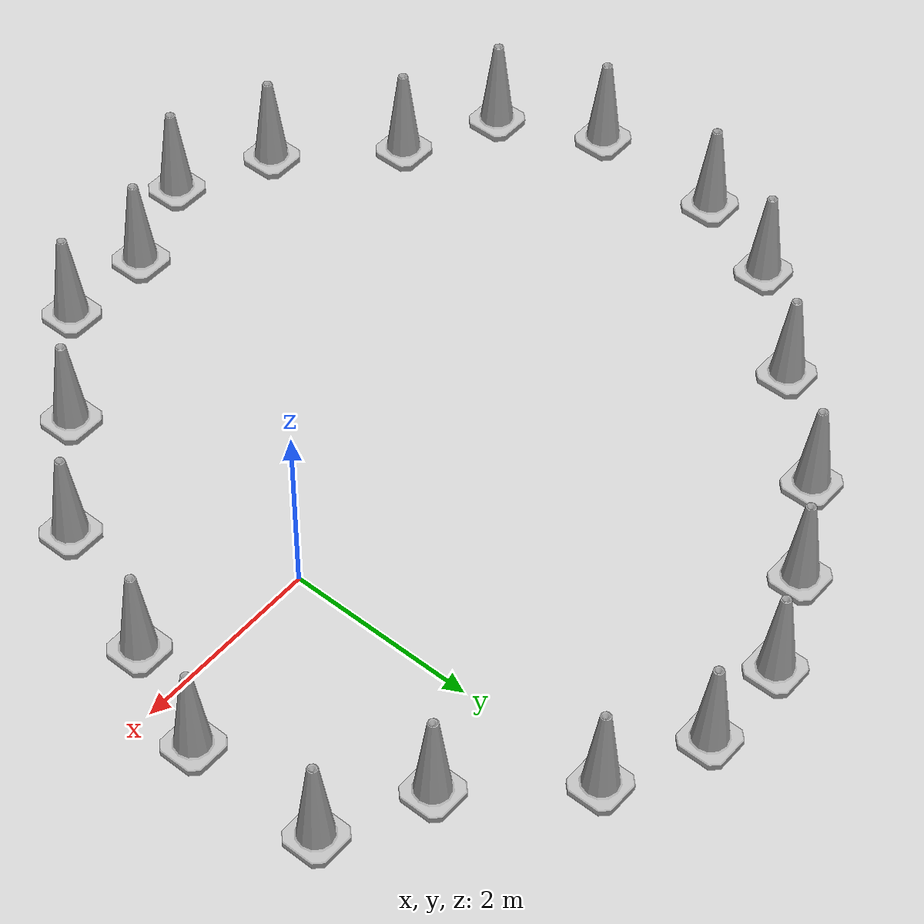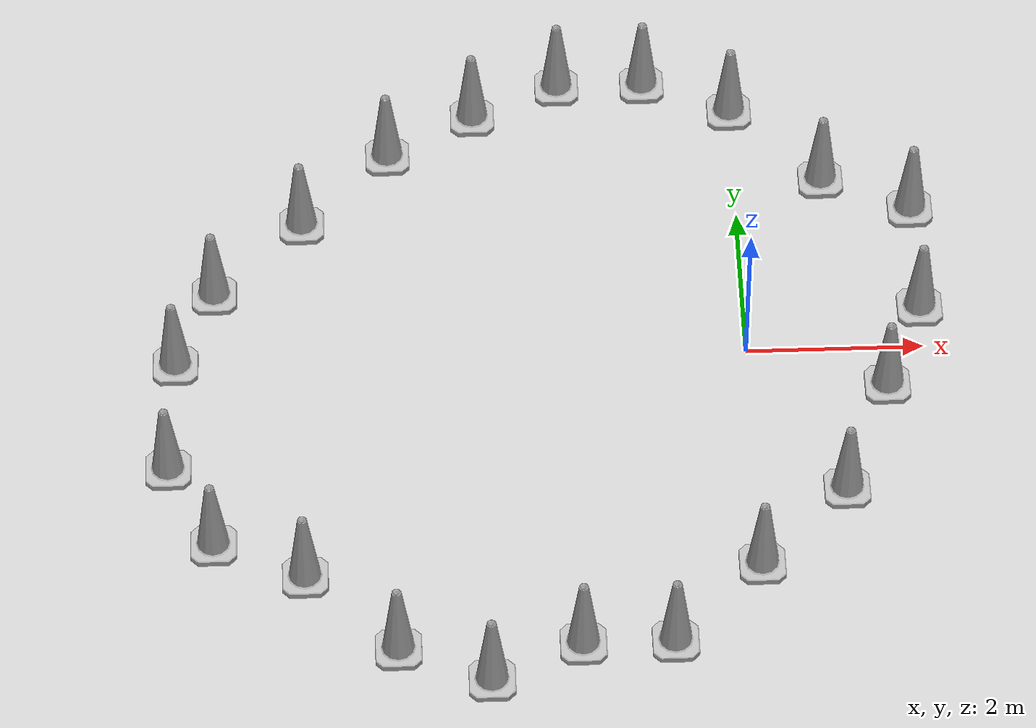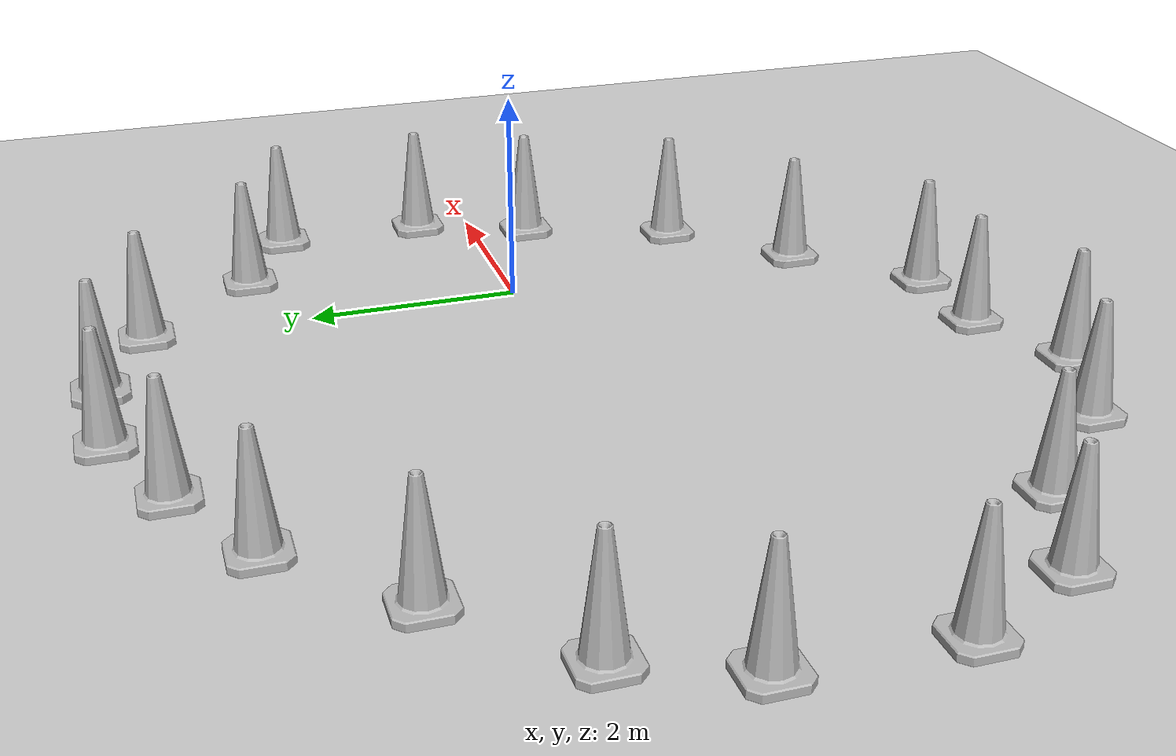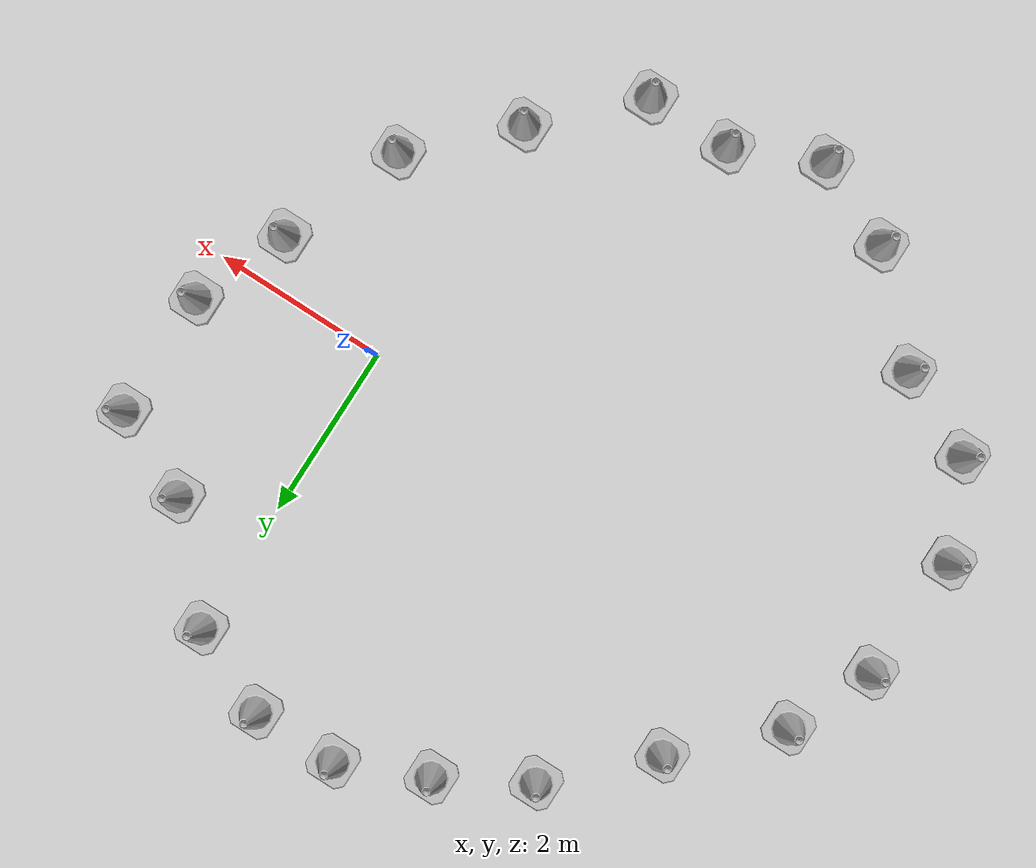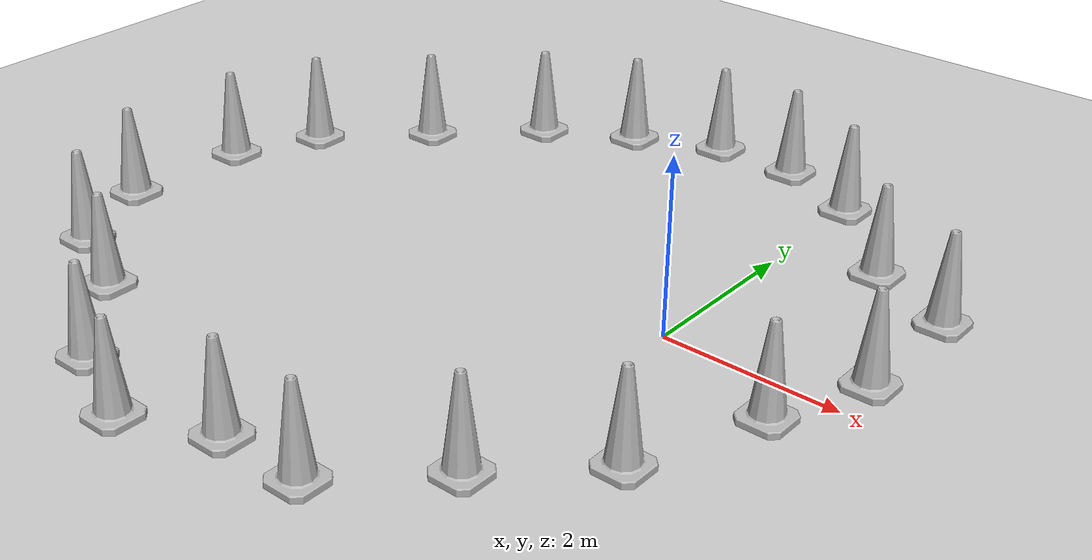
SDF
<sdf version="1.4">
 <world name="default">
  <light name="sun" type="directional">
   <pose>0 0 10 0 -0 0</pose>
   <diffuse>0.8 0.8 0.8 1</diffuse>
   <specular>0.2 0.2 0.2 1</specular>
   <attenuation>
    <range>1000</range>
    <constant>0.9</constant>
    <linear>0.01</linear>
    <quadratic>0.001</quadratic>
   </attenuation>
   <direction>-0.5 0.1 -0.9</direction>
  </light>
  <model name="ground_plane">
   <static>1</static>
   <link name="link">
    <collision name="collision">
     <geometry><plane><normal>0 0 1</normal><size>100 100</size></plane></geometry>
     <surface><friction><ode><mu>100</mu><mu2>50</mu2></ode></friction></surface>
    </collision>
    <visual name="visual">
     <cast_shadows>0</cast_shadows>
     <geometry><plane><normal>0 0 1</normal><size>100 100</size></plane></geometry>
     <material>
      <script><uri>file://media/materials/scripts/gazebo.material</uri><name>Gazebo/Grey</name></script>
     </material>
    </visual>
    <velocity_decay><linear>0</linear><angular>0</angular></velocity_decay>
   </link>
  </model>
  <physics type="ode">
   <max_step_size>0.001</max_step_size>
   <real_time_factor>1</real_time_factor>
   <real_time_update_rate>1000</real_time_update_rate>
   <gravity>0 0 -9.8</gravity>
  </physics>
  <scene><ambient>0.4 0.4 0.4 1</ambient><background>0.7 0.7 0.7 1</background><shadows>1</shadows></scene>
  <spherical_coordinates>
   <surface_model>EARTH_WGS84</surface_model>
   <latitude_deg>0</latitude_deg>
   <longitude_deg>0</longitude_deg>
   <elevation>0</elevation>
   <heading_deg>0</heading_deg>
  </spherical_coordinates>
  <model name="Construction Cone">
   <link name="link">
    <collision name="collision">
     <geometry>
      <mesh><scale>10 10 10</scale><uri>model://construction_cone/meshes/construction_cone.dae</uri></mesh>
     </geometry>
    </collision>
    <visual name="visual">
     <geometry>
      <mesh><scale>10 10 10</scale><uri>model://construction_cone/meshes/construction_cone.dae</uri></mesh>
     </geometry>
    </visual>
    <velocity_decay><linear>0</linear><angular>0</angular></velocity_decay>
    <inertial>
     <inertia><ixx>1</ixx><ixy>0</ixy><ixz>0</ixz><iyy>1</iyy><iyz>0</iyz><izz>1</izz></inertia>
     <mass>1</mass>
    </inertial>
   </link>
   <pose>-6.43497 -0 -7e-06 -5e-06 3e-06 3.23117e-27</pose>
   <static>0</static>
  </model>
  <model name="Construction Cone_0">
   <link name="link">
    <collision name="collision">
     <geometry>
      <mesh><scale>10 10 10</scale><uri>model://construction_cone/meshes/construction_cone.dae</uri></mesh>
     </geometry>
    </collision>
    <visual name="visual">
     <geometry>
      <mesh><scale>10 10 10</scale><uri>model://construction_cone/meshes/construction_cone.dae</uri></mesh>
     </geometry>
    </visual>
    <velocity_decay><linear>0</linear><angular>0</angular></velocity_decay>
    <inertial>
     <inertia><ixx>1</ixx><ixy>0</ixy><ixz>0</ixz><iyy>1</iyy><iyz>0</iyz><izz>1</izz></inertia>
     <mass>1</mass>
    </inertial>
   </link>
   <pose>-6 1 -9e-06 -1e-06 -0 -0</pose>
   <static>0</static>
  </model>
  <model name="Construction Cone_1">
   <link name="link">
    <collision name="collision">
     <geometry>
      <mesh><scale>10 10 10</scale><uri>model://construction_cone/meshes/construction_cone.dae</uri></mesh>
     </geometry>
    </collision>
    <visual name="visual">
     <geometry>
      <mesh><scale>10 10 10</scale><uri>model://construction_cone/meshes/construction_cone.dae</uri></mesh>
     </geometry>
    </visual>
    <velocity_decay><linear>0</linear><angular>0</angular></velocity_decay>
    <inertial>
     <inertia><ixx>1</ixx><ixy>0</ixy><ixz>0</ixz><iyy>1</iyy><iyz>0</iyz><izz>1</izz></inertia>
     <mass>1</mass>
    </inertial>
   </link>
   <pose>-5 2 -0 0 -1e-06 0</pose>
   <static>0</static>
  </model>
  <model name="Construction Cone_2">
   <link name="link">
    <collision name="collision">
     <geometry>
      <mesh><scale>10 10 10</scale><uri>model://construction_cone/meshes/construction_cone.dae</uri></mesh>
     </geometry>
    </collision>
    <visual name="visual">
     <geometry>
      <mesh><scale>10 10 10</scale><uri>model://construction_cone/meshes/construction_cone.dae</uri></mesh>
     </geometry>
    </visual>
    <velocity_decay><linear>0</linear><angular>0</angular></velocity_decay>
    <inertial>
     <inertia><ixx>1</ixx><ixy>0</ixy><ixz>0</ixz><iyy>1</iyy><iyz>0</iyz><izz>1</izz></inertia>
     <mass>1</mass>
    </inertial>
   </link>
   <pose>-4 3 0 0 -0 0</pose>
   <static>0</static>
  </model>
  <model name="Construction Cone_3">
   <link name="link">
    <collision name="collision">
     <geometry>
      <mesh><scale>10 10 10</scale><uri>model://construction_cone/meshes/construction_cone.dae</uri></mesh>
     </geometry>
    </collision>
    <visual name="visual">
     <geometry>
      <mesh><scale>10 10 10</scale><uri>model://construction_cone/meshes/construction_cone.dae</uri></mesh>
     </geometry>
    </visual>
    <velocity_decay><linear>0</linear><angular>0</angular></velocity_decay>
    <inertial>
     <inertia><ixx>1</ixx><ixy>0</ixy><ixz>0</ixz><iyy>1</iyy><iyz>0</iyz><izz>1</izz></inertia>
     <mass>1</mass>
    </inertial>
   </link>
   <pose>-3 3.56534 -0 0 2e-06 0</pose>
   <static>0</static>
  </model>
  <model name="Construction Cone_4">
   <link name="link">
    <collision name="collision">
     <geometry>
      <mesh><scale>10 10 10</scale><uri>model://construction_cone/meshes/construction_cone.dae</uri></mesh>
     </geometry>
    </collision>
    <visual name="visual">
     <geometry>
      <mesh><scale>10 10 10</scale><uri>model://construction_cone/meshes/construction_cone.dae</uri></mesh>
     </geometry>
    </visual>
    <velocity_decay><linear>0</linear><angular>0</angular></velocity_decay>
    <inertial>
     <inertia><ixx>1</ixx><ixy>0</ixy><ixz>0</ixz><iyy>1</iyy><iyz>0</iyz><izz>1</izz></inertia>
     <mass>1</mass>
    </inertial>
   </link>
   <pose>-2 4 -1e-06 0 -1e-06 0</pose>
   <static>0</static>
  </model>
  <model name="Construction Cone_5">
   <link name="link">
    <collision name="collision">
     <geometry>
      <mesh><scale>10 10 10</scale><uri>model://construction_cone/meshes/construction_cone.dae</uri></mesh>
     </geometry>
    </collision>
    <visual name="visual">
     <geometry>
      <mesh><scale>10 10 10</scale><uri>model://construction_cone/meshes/construction_cone.dae</uri></mesh>
     </geometry>
    </visual>
    <velocity_decay><linear>0</linear><angular>0</angular></velocity_decay>
    <inertial>
     <inertia><ixx>1</ixx><ixy>0</ixy><ixz>0</ixz><iyy>1</iyy><iyz>0</iyz><izz>1</izz></inertia>
     <mass>1</mass>
    </inertial>
   </link>
   <pose>-1 4 -1e-06 0 -1e-06 0</pose>
   <static>0</static>
  </model>
  <model name="Construction Cone_6">
   <link name="link">
    <collision name="collision">
     <geometry>
      <mesh><scale>10 10 10</scale><uri>model://construction_cone/meshes/construction_cone.dae</uri></mesh>
     </geometry>
    </collision>
    <visual name="visual">
     <geometry>
      <mesh><scale>10 10 10</scale><uri>model://construction_cone/meshes/construction_cone.dae</uri></mesh>
     </geometry>
    </visual>
    <velocity_decay><linear>0</linear><angular>0</angular></velocity_decay>
    <inertial>
     <inertia><ixx>1</ixx><ixy>0</ixy><ixz>0</ixz><iyy>1</iyy><iyz>0</iyz><izz>1</izz></inertia>
     <mass>1</mass>
    </inertial>
   </link>
   <pose>0 3.54905 -0 -1e-06 0 0</pose>
   <static>0</static>
  </model>
  <model name="Construction Cone_7">
   <link name="link">
    <collision name="collision">
     <geometry>
      <mesh><scale>10 10 10</scale><uri>model://construction_cone/meshes/construction_cone.dae</uri></mesh>
     </geometry>
    </collision>
    <visual name="visual">
     <geometry>
      <mesh><scale>10 10 10</scale><uri>model://construction_cone/meshes/construction_cone.dae</uri></mesh>
     </geometry>
    </visual>
    <velocity_decay><linear>0</linear><angular>0</angular></velocity_decay>
    <inertial>
     <inertia><ixx>1</ixx><ixy>0</ixy><ixz>0</ixz><iyy>1</iyy><iyz>0</iyz><izz>1</izz></inertia>
     <mass>1</mass>
    </inertial>
   </link>
   <pose>1 2.47418 -7e-06 -1e-06 -1e-06 0</pose>
   <static>0</static>
  </model>
  <model name="Construction Cone_8">
   <link name="link">
    <collision name="collision">
     <geometry>
      <mesh><scale>10 10 10</scale><uri>model://construction_cone/meshes/construction_cone.dae</uri></mesh>
     </geometry>
    </collision>
    <visual name="visual">
     <geometry>
      <mesh><scale>10 10 10</scale><uri>model://construction_cone/meshes/construction_cone.dae</uri></mesh>
     </geometry>
    </visual>
    <velocity_decay><linear>0</linear><angular>0</angular></velocity_decay>
    <inertial>
     <inertia><ixx>1</ixx><ixy>0</ixy><ixz>0</ixz><iyy>1</iyy><iyz>0</iyz><izz>1</izz></inertia>
     <mass>1</mass>
    </inertial>
   </link>
   <pose>-6.50531 -1.47226 -1e-05 -1e-06 1e-06 0</pose>
   <static>0</static>
  </model>
  <model name="Construction Cone_9">
   <link name="link">
    <collision name="collision">
     <geometry>
      <mesh><scale>10 10 10</scale><uri>model://construction_cone/meshes/construction_cone.dae</uri></mesh>
     </geometry>
    </collision>
    <visual name="visual">
     <geometry>
      <mesh><scale>10 10 10</scale><uri>model://construction_cone/meshes/construction_cone.dae</uri></mesh>
     </geometry>
    </visual>
    <velocity_decay><linear>0</linear><angular>0</angular></velocity_decay>
    <inertial>
     <inertia><ixx>1</ixx><ixy>0</ixy><ixz>0</ixz><iyy>1</iyy><iyz>0</iyz><izz>1</izz></inertia>
     <mass>1</mass>
    </inertial>
   </link>
   <pose>-6 -2.52967 -1e-06 -2e-06 -3e-06 0</pose>
   <static>0</static>
  </model>
  <model name="Construction Cone_10">
   <link name="link">
    <collision name="collision">
     <geometry>
      <mesh><scale>10 10 10</scale><uri>model://construction_cone/meshes/construction_cone.dae</uri></mesh>
     </geometry>
    </collision>
    <visual name="visual">
     <geometry>
      <mesh><scale>10 10 10</scale><uri>model://construction_cone/meshes/construction_cone.dae</uri></mesh>
     </geometry>
    </visual>
    <velocity_decay><linear>0</linear><angular>0</angular></velocity_decay>
    <inertial>
     <inertia><ixx>1</ixx><ixy>0</ixy><ixz>0</ixz><iyy>1</iyy><iyz>0</iyz><izz>1</izz></inertia>
     <mass>1</mass>
    </inertial>
   </link>
   <pose>-5 -3 -9e-06 2e-06 -1e-06 -8.07794e-28</pose>
   <static>0</static>
  </model>
  <model name="Construction Cone_11">
   <link name="link">
    <collision name="collision">
     <geometry>
      <mesh><scale>10 10 10</scale><uri>model://construction_cone/meshes/construction_cone.dae</uri></mesh>
     </geometry>
    </collision>
    <visual name="visual">
     <geometry>
      <mesh><scale>10 10 10</scale><uri>model://construction_cone/meshes/construction_cone.dae</uri></mesh>
     </geometry>
    </visual>
    <velocity_decay><linear>0</linear><angular>0</angular></velocity_decay>
    <inertial>
     <inertia><ixx>1</ixx><ixy>0</ixy><ixz>0</ixz><iyy>1</iyy><iyz>0</iyz><izz>1</izz></inertia>
     <mass>1</mass>
    </inertial>
   </link>
   <pose>-4 -4 -0 -2e-06 -0 -0</pose>
   <static>0</static>
  </model>
  <model name="Construction Cone_12">
   <link name="link">
    <collision name="collision">
     <geometry>
      <mesh><scale>10 10 10</scale><uri>model://construction_cone/meshes/construction_cone.dae</uri></mesh>
     </geometry>
    </collision>
    <visual name="visual">
     <geometry>
      <mesh><scale>10 10 10</scale><uri>model://construction_cone/meshes/construction_cone.dae</uri></mesh>
     </geometry>
    </visual>
    <velocity_decay><linear>0</linear><angular>0</angular></velocity_decay>
    <inertial>
     <inertia><ixx>1</ixx><ixy>0</ixy><ixz>0</ixz><iyy>1</iyy><iyz>0</iyz><izz>1</izz></inertia>
     <mass>1</mass>
    </inertial>
   </link>
   <pose>-3 -4.44189 0 0 -0 0</pose>
   <static>0</static>
  </model>
  <model name="Construction Cone_13">
   <link name="link">
    <collision name="collision">
     <geometry>
      <mesh><scale>10 10 10</scale><uri>model://construction_cone/meshes/construction_cone.dae</uri></mesh>
     </geometry>
    </collision>
    <visual name="visual">
     <geometry>
      <mesh><scale>10 10 10</scale><uri>model://construction_cone/meshes/construction_cone.dae</uri></mesh>
     </geometry>
    </visual>
    <velocity_decay><linear>0</linear><angular>0</angular></velocity_decay>
    <inertial>
     <inertia><ixx>1</ixx><ixy>0</ixy><ixz>0</ixz><iyy>1</iyy><iyz>0</iyz><izz>1</izz></inertia>
     <mass>1</mass>
    </inertial>
   </link>
   <pose>-2 -4 -9e-06 1e-06 1e-06 0</pose>
   <static>0</static>
  </model>
  <model name="Construction Cone_14">
   <link name="link">
    <collision name="collision">
     <geometry>
      <mesh><scale>10 10 10</scale><uri>model://construction_cone/meshes/construction_cone.dae</uri></mesh>
     </geometry>
    </collision>
    <visual name="visual">
     <geometry>
      <mesh><scale>10 10 10</scale><uri>model://construction_cone/meshes/construction_cone.dae</uri></mesh>
     </geometry>
    </visual>
    <velocity_decay><linear>0</linear><angular>0</angular></velocity_decay>
    <inertial>
     <inertia><ixx>1</ixx><ixy>0</ixy><ixz>0</ixz><iyy>1</iyy><iyz>0</iyz><izz>1</izz></inertia>
     <mass>1</mass>
    </inertial>
   </link>
   <pose>-1 -4 -7e-06 -1e-06 -0 -0</pose>
   <static>0</static>
  </model>
  <model name="Construction Cone_15">
   <link name="link">
    <collision name="collision">
     <geometry>
      <mesh><scale>10 10 10</scale><uri>model://construction_cone/meshes/construction_cone.dae</uri></mesh>
     </geometry>
    </collision>
    <visual name="visual">
     <geometry>
      <mesh><scale>10 10 10</scale><uri>model://construction_cone/meshes/construction_cone.dae</uri></mesh>
     </geometry>
    </visual>
    <velocity_decay><linear>0</linear><angular>0</angular></velocity_decay>
    <inertial>
     <inertia><ixx>1</ixx><ixy>0</ixy><ixz>0</ixz><iyy>1</iyy><iyz>0</iyz><izz>1</izz></inertia>
     <mass>1</mass>
    </inertial>
   </link>
   <pose>0 -3 -0 -0 -0 -0</pose>
   <static>0</static>
  </model>
  <model name="Construction Cone_16">
   <link name="link">
    <collision name="collision">
     <geometry>
      <mesh><scale>10 10 10</scale><uri>model://construction_cone/meshes/construction_cone.dae</uri></mesh>
     </geometry>
    </collision>
    <visual name="visual">
     <geometry>
      <mesh><scale>10 10 10</scale><uri>model://construction_cone/meshes/construction_cone.dae</uri></mesh>
     </geometry>
    </visual>
    <velocity_decay><linear>0</linear><angular>0</angular></velocity_decay>
    <inertial>
     <inertia><ixx>1</ixx><ixy>0</ixy><ixz>0</ixz><iyy>1</iyy><iyz>0</iyz><izz>1</izz></inertia>
     <mass>1</mass>
    </inertial>
   </link>
   <pose>1 -2 -7e-06 1e-06 -4e-06 0</pose>
   <static>0</static>
  </model>
  <model name="Construction Cone_17">
   <link name="link">
    <collision name="collision">
     <geometry>
      <mesh><scale>10 10 10</scale><uri>model://construction_cone/meshes/construction_cone.dae</uri></mesh>
     </geometry>
    </collision>
    <visual name="visual">
     <geometry>
      <mesh><scale>10 10 10</scale><uri>model://construction_cone/meshes/construction_cone.dae</uri></mesh>
     </geometry>
    </visual>
    <velocity_decay><linear>0</linear><angular>0</angular></velocity_decay>
    <inertial>
     <inertia><ixx>1</ixx><ixy>0</ixy><ixz>0</ixz><iyy>1</iyy><iyz>0</iyz><izz>1</izz></inertia>
     <mass>1</mass>
    </inertial>
   </link>
   <pose>1.55353 -0.559823 -0 0 1e-06 0</pose>
   <static>0</static>
  </model>
  <model name="Construction Cone_18">
   <link name="link">
    <collision name="collision">
     <geometry>
      <mesh><scale>10 10 10</scale><uri>model://construction_cone/meshes/construction_cone.dae</uri></mesh>
     </geometry>
    </collision>
    <visual name="visual">
     <geometry>
      <mesh><scale>10 10 10</scale><uri>model://construction_cone/meshes/construction_cone.dae</uri></mesh>
     </geometry>
    </visual>
    <velocity_decay><linear>0</linear><angular>0</angular></velocity_decay>
    <inertial>
     <inertia><ixx>1</ixx><ixy>0</ixy><ixz>0</ixz><iyy>1</iyy><iyz>0</iyz><izz>1</izz></inertia>
     <mass>1</mass>
    </inertial>
   </link>
   <pose>2 0.541325 -0 -1e-06 0 0</pose>
   <static>0</static>
  </model>
  <model name="Construction Cone_19">
   <link name="link">
    <collision name="collision">
     <geometry>
      <mesh><scale>10 10 10</scale><uri>model://construction_cone/meshes/construction_cone.dae</uri></mesh>
     </geometry>
    </collision>
    <visual name="visual">
     <geometry>
      <mesh><scale>10 10 10</scale><uri>model://construction_cone/meshes/construction_cone.dae</uri></mesh>
     </geometry>
    </visual>
    <velocity_decay><linear>0</linear><angular>0</angular></velocity_decay>
    <inertial>
     <inertia><ixx>1</ixx><ixy>0</ixy><ixz>0</ixz><iyy>1</iyy><iyz>0</iyz><izz>1</izz></inertia>
     <mass>1</mass>
    </inertial>
   </link>
   <pose>2 2 0 -0 -0 -0</pose>
   <static>0</static>
  </model>
 </world>
</sdf>
